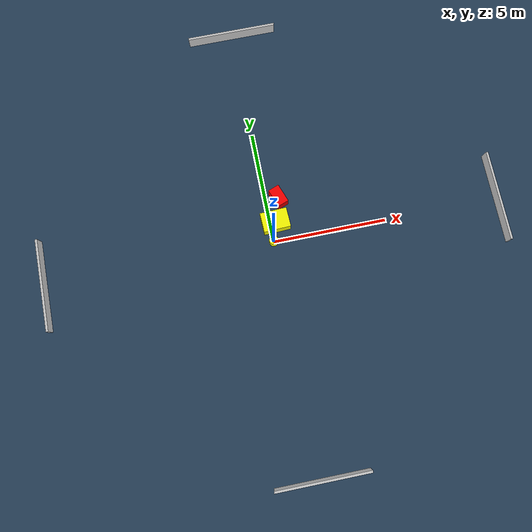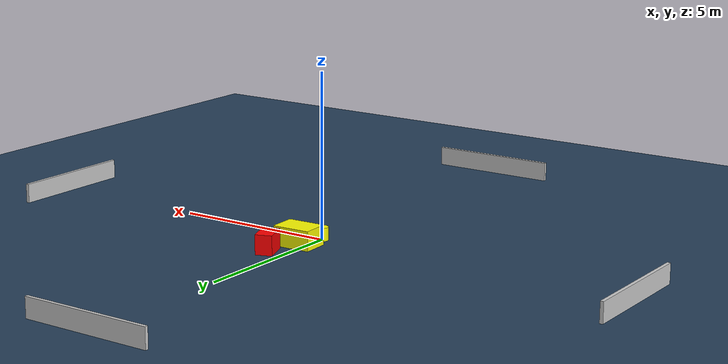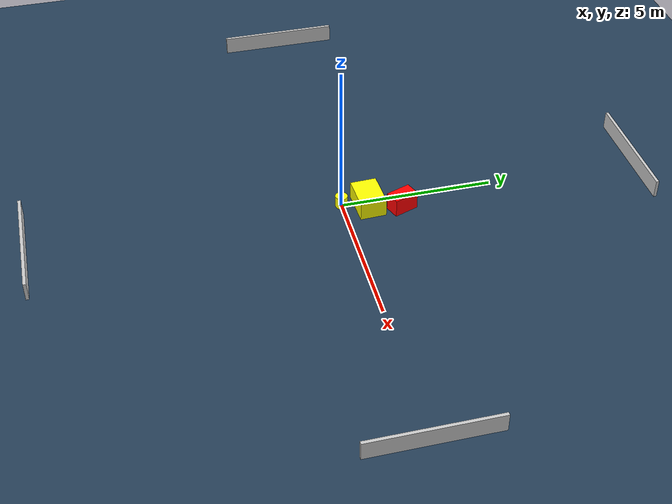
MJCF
<?xml version="1.0" ?>
<mujoco model="generated_environment">
  <option timestep="0.01" integrator="RK4" cone="elliptic"/>
  <default>
    <geom density="1"/>
  </default>
  <asset>
    <texture builtin="gradient" height="3072" name="skybox" rgb1="0.3 0.5 0.7" rgb2="0 0 0" type="skybox" width="512"/>
    <texture builtin="checker" height="300" name="groundplane" rgb1="0.2 0.3 0.4" rgb2="0.1 0.2 0.3" type="2d" width="300"/>
    <material name="groundplane" reflectance="0.2" texrepeat="5 5" texture="groundplane"/>
  </asset>
  <worldbody>
    <light dir="0 0 -1" directional="true" pos="0 0 1.5"/>
    <geom condim="3" friction="0.5 0.005 0.001" material="groundplane" name="floor" pos="0 0 0" size="0 0 0.05" type="plane"/>
    <body name="walls">
      <geom name="wall_1" condim="4" pos="-10.0 0.0 0.3" rgba="0.800000011920929 0.800000011920929 0.800000011920929 1.0" size="0.05 2.0 0.3" type="box"/>
      <geom name="wall_2" condim="4" pos="10.0 0.0 0.3" rgba="0.800000011920929 0.800000011920929 0.800000011920929 1.0" size="0.05 2.0 0.3" type="box"/>
      <geom name="wall_3" condim="4" pos="0.0 -10.0 0.3" rgba="0.800000011920929 0.800000011920929 0.800000011920929 1.0" size="2.0 0.05 0.3" type="box"/>
      <geom name="wall_4" condim="4" pos="0.0 10.0 0.3" rgba="0.800000011920929 0.800000011920929 0.800000011920929 1.0" size="2.0 0.05 0.3" type="box"/>
    </body>
    <body name="robot">
      <joint name="joint_x" type="slide" pos="0 0 0" axis="1 0 0"/>
      <joint name="joint_y" type="slide" pos="0 0 0" axis="0 1 0"/>
      <geom name="robot" type="cylinder" pos="0.0 0.0 0.2" size="0.2 0.2 0.0" mass="5.0" friction="1.0 0.005 0.0001" condim="4" rgba="1.0 1.0 0.0 1.0"/>
    </body>
    <body name="obstacle_1_movable">
      <geom name="obstacle_1_movable" condim="4" pos="0.22822588540814326 0.8277583562723065 0.3" euler="0 0 2.378456056202314" friction="0.0 0.005 0.001" rgba="1.0 1.0 0.0 1.0" size="0.5888709086826303 0.4254246009016103 0.3" type="box" mass="0.1"/>
      <joint type="free"/>
    </body>
    <body name="obstacle_2_static">
      <geom name="obstacle_2_static" condim="4" pos="0.5708813783414517 1.8595484008190264 0.3" euler="0 0 20.38664043321296" friction="0.0 0.005 0.001" rgba="1.0 0.0 0.0 1.0" size="0.25230993263318807 0.413528174826815 0.3" type="box"/>
    </body>
  </worldbody>
  <actuator>
    <motor name="actuator_x" joint="joint_x" gear="1" ctrlrange="-1 1"/>
    <motor name="actuator_y" joint="joint_y" gear="1" ctrlrange="-1 1"/>
  </actuator>
</mujoco>
